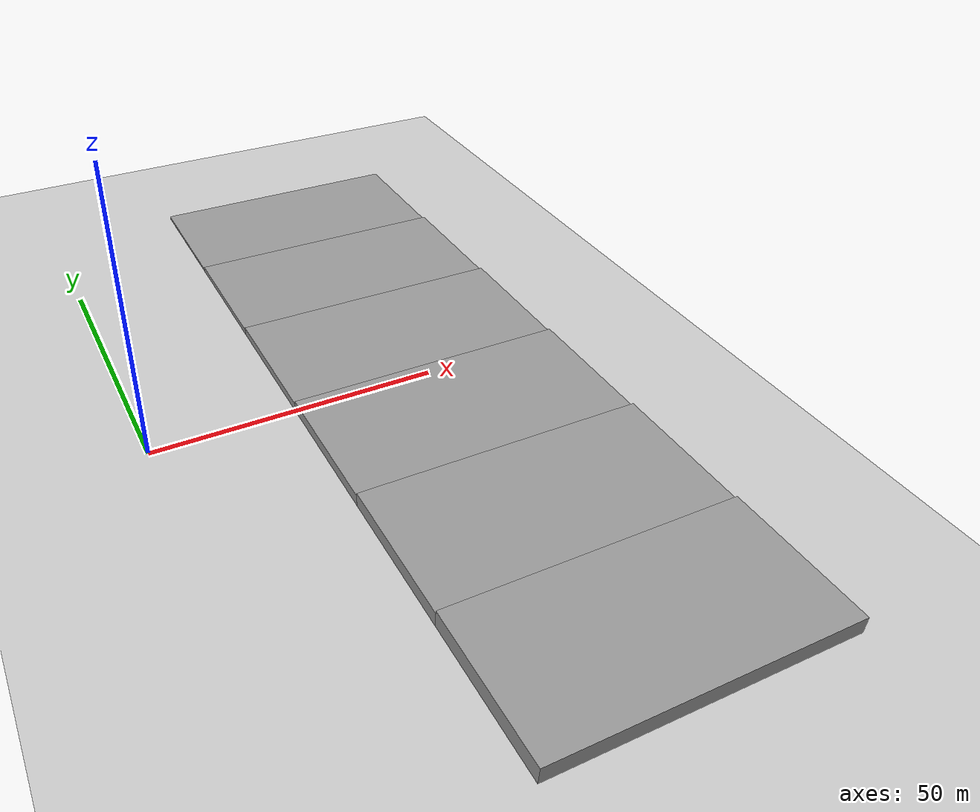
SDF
<sdf version="1.7">
 <world name="myworld2">
  <light name="sun" type="directional">
   <pose>0 0 10 0 -0 0</pose>
   <diffuse>0.8 0.8 0.8 1</diffuse>
   <specular>0.2 0.2 0.2 1</specular>
   <attenuation>
    <range>1000</range>
    <constant>0.9</constant>
    <linear>0.01</linear>
    <quadratic>0.001</quadratic>
   </attenuation>
   <direction>-0.5 0.1 -0.9</direction>
   <spot><inner_angle>0</inner_angle><outer_angle>0</outer_angle><falloff>0</falloff></spot>
  </light>
  <model name="ground_plane">
   <static>1</static>
   <link name="link">
    <collision name="collision">
     <geometry><plane><normal>0 0 1</normal><size>150 150</size></plane></geometry>
     <surface>
      <contact><collide_bitmask>65535</collide_bitmask></contact>
      <friction><ode><mu>100</mu><mu2>50</mu2></ode></friction>
     </surface>
    </collision>
    <visual name="visual">
     <cast_shadows>0</cast_shadows>
     <geometry><plane><normal>0 0 1</normal><size>150 150</size></plane></geometry>
     <material>
      <script><uri>file://media/materials/scripts/gazebo.material</uri><name>Gazebo/Grey</name></script>
     </material>
    </visual>
   </link>
  </model>
  <gravity>0 0 -9.8</gravity>
  <magnetic_field>6e-06 2.3e-05 -4.2e-05</magnetic_field>
  <atmosphere type="adiabatic"/>
  <physics type="ode">
   <max_step_size>0.001</max_step_size>
   <real_time_factor>1</real_time_factor>
   <real_time_update_rate>1000</real_time_update_rate>
  </physics>
  <scene><ambient>0.4 0.4 0.4 1</ambient><background>0.7 0.7 0.7 1</background><shadows>1</shadows></scene>
  <audio><device>default</device></audio>
  <spherical_coordinates>
   <surface_model>EARTH_WGS84</surface_model>
   <latitude_deg>0</latitude_deg>
   <longitude_deg>0</longitude_deg>
   <elevation>0</elevation>
   <heading_deg>0</heading_deg>
  </spherical_coordinates>
  <model name="curb_1">
   <static>1</static>
   <pose>50 62.5 0.25 0 -0 0</pose>
   <link name="link">
    <inertial>
     <mass>1</mass>
     <inertia>
      <ixx>0.166667</ixx>
      <ixy>0</ixy>
      <ixz>0</ixz>
      <iyy>0.166667</iyy>
      <iyz>0</iyz>
      <izz>0.166667</izz>
     </inertia>
    </inertial>
    <collision name="collision"><geometry><box><size>50 25 0.5</size></box></geometry></collision>
    <visual name="visual">
     <geometry><box><size>50 25 0.5</size></box></geometry>
     <material>
      <script><name>Gazebo/Grey</name><uri>file://media/materials/scripts/gazebo.material</uri></script>
     </material>
    </visual>
   </link>
  </model>
  <model name="curb_2">
   <static>1</static>
   <pose>50 37.5 0.5 0 -0 0</pose>
   <link name="link">
    <inertial>
     <mass>1</mass>
     <inertia>
      <ixx>0.166667</ixx>
      <ixy>0</ixy>
      <ixz>0</ixz>
      <iyy>0.166667</iyy>
      <iyz>0</iyz>
      <izz>0.166667</izz>
     </inertia>
    </inertial>
    <collision name="collision"><geometry><box><size>50 25 1</size></box></geometry></collision>
    <visual name="visual">
     <geometry><box><size>50 25 1</size></box></geometry>
     <material>
      <script><name>Gazebo/Grey</name><uri>file://media/materials/scripts/gazebo.material</uri></script>
     </material>
    </visual>
   </link>
  </model>
  <model name="curb_3">
   <static>1</static>
   <pose>50 12.5 0.75 0 -0 0</pose>
   <link name="link">
    <inertial>
     <mass>1</mass>
     <inertia>
      <ixx>0.166667</ixx>
      <ixy>0</ixy>
      <ixz>0</ixz>
      <iyy>0.166667</iyy>
      <iyz>0</iyz>
      <izz>0.166667</izz>
     </inertia>
    </inertial>
    <collision name="collision"><geometry><box><size>50 25 1.5</size></box></geometry></collision>
    <visual name="visual">
     <geometry><box><size>50 25 1.5</size></box></geometry>
     <material>
      <script><name>Gazebo/Grey</name><uri>file://media/materials/scripts/gazebo.material</uri></script>
     </material>
    </visual>
   </link>
  </model>
  <model name="curb_4">
   <static>1</static>
   <pose>50 -12.5 1 0 -0 0</pose>
   <link name="link">
    <inertial>
     <mass>1</mass>
     <inertia>
      <ixx>0.166667</ixx>
      <ixy>0</ixy>
      <ixz>0</ixz>
      <iyy>0.166667</iyy>
      <iyz>0</iyz>
      <izz>0.166667</izz>
     </inertia>
    </inertial>
    <collision name="collision"><geometry><box><size>50 25 2</size></box></geometry></collision>
    <visual name="visual">
     <geometry><box><size>50 25 2</size></box></geometry>
     <material>
      <script><name>Gazebo/Grey</name><uri>file://media/materials/scripts/gazebo.material</uri></script>
     </material>
    </visual>
   </link>
  </model>
  <model name="curb_5">
   <static>1</static>
   <pose>50 -37.5 1.25 0 -0 0</pose>
   <link name="link">
    <inertial>
     <mass>1</mass>
     <inertia>
      <ixx>0.166667</ixx>
      <ixy>0</ixy>
      <ixz>0</ixz>
      <iyy>0.166667</iyy>
      <iyz>0</iyz>
      <izz>0.166667</izz>
     </inertia>
    </inertial>
    <collision name="collision"><geometry><box><size>50 25 2.5</size></box></geometry></collision>
    <visual name="visual">
     <geometry><box><size>50 25 2.5</size></box></geometry>
     <material>
      <script><name>Gazebo/Grey</name><uri>file://media/materials/scripts/gazebo.material</uri></script>
     </material>
    </visual>
   </link>
  </model>
  <model name="curb_6">
   <static>1</static>
   <pose>50 -62.5 1.5 0 -0 0</pose>
   <link name="link">
    <inertial>
     <mass>1</mass>
     <inertia>
      <ixx>0.166667</ixx>
      <ixy>0</ixy>
      <ixz>0</ixz>
      <iyy>0.166667</iyy>
      <iyz>0</iyz>
      <izz>0.166667</izz>
     </inertia>
    </inertial>
    <collision name="collision"><geometry><box><size>50 25 3</size></box></geometry></collision>
    <visual name="visual">
     <geometry><box><size>50 25 3</size></box></geometry>
     <material>
      <script><name>Gazebo/Grey</name><uri>file://media/materials/scripts/gazebo.material</uri></script>
     </material>
    </visual>
   </link>
  </model>
 </world>
</sdf>
